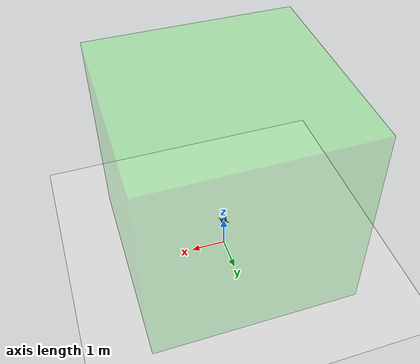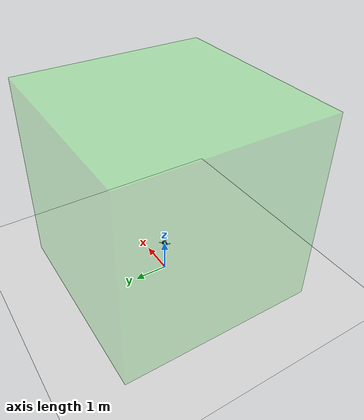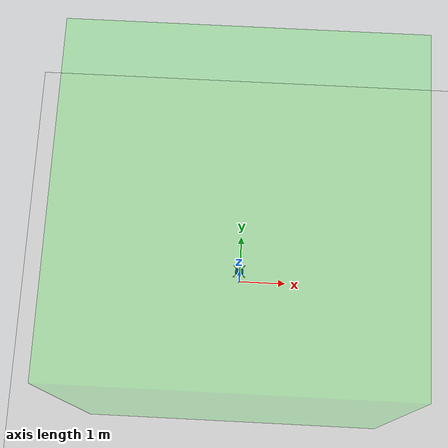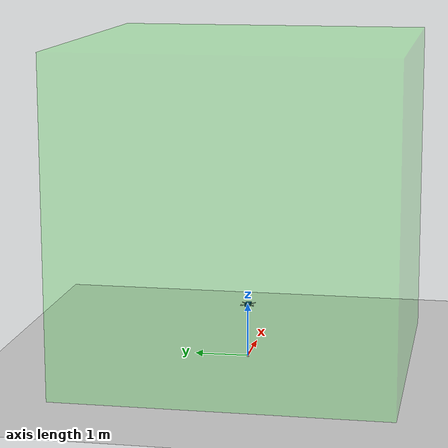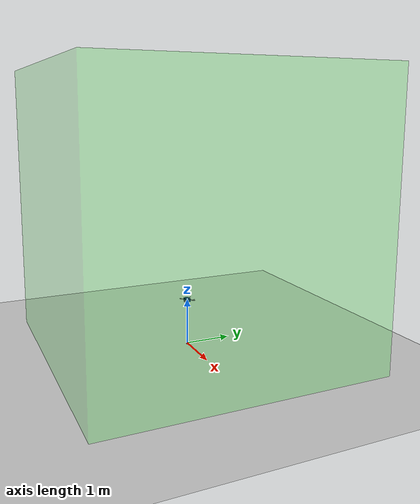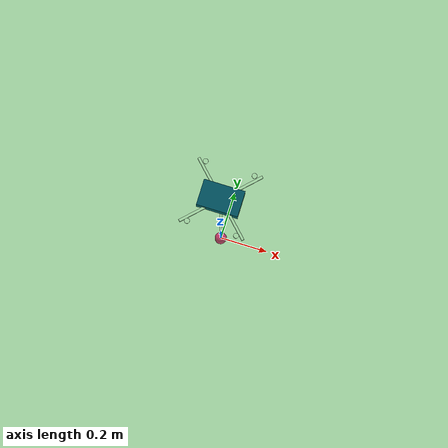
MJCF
<mujoco model="quadrotor_white_falcon">
    <compiler angle="degree" coordinate="local"/>
    <option timestep="0.002" gravity="0 0 -9.81" density="1.225" viscosity="1.789e-5" integrator="RK4" />  wind="10 0 0"
    <default>
        <geom contype="0" conaffinity="0" condim="1" solref="0.001 1" density="0"/>
        <default class="collision">
            <geom group="2" contype="1" type="box" density="0" />
        </default>
    </default>
    <asset>
        <texture builtin="gradient" height="100" width="100" rgb1="0.6 0.8 1.0" rgb2="1 1 1" type="skybox"/>
        <texture name="texplane" builtin="checker" height="100" width="100" rgb1="0.7 0.8 1.0" rgb2="1 1 1" type="2d"/>
        <material name="matplane" texture="texplane" texrepeat="10 10" reflectance="0.2" shininess="0.2" specular="0.5"/>
    </asset>

    <worldbody>
        <light cutoff="100" diffuse="1 1 1" dir="0 0 -1.3" directional="true" exponent="1" pos="0 0 10" specular=".1 .1 .1"/>
        <geom conaffinity="1" condim="3" material="matplane" name="floor" pos="0 0 -0.05" rgba="0.8 0.8 0.8 1" size="10 10 0.2" type="plane"/>
        <geom type="box" size="3 3 3" pos="0 0 2.94" rgba="0 1 0 0.05" conaffinity="0"/>

        <body name="quadrotor" pos="0 0 1">
            <freejoint/>
            <inertial pos="0 0 0" mass="0.835" diaginertia="0.00401 0.00358 0.00636" />
            <geom class="collision" type="box" pos="0 0 0" quat="1 0 0 0" size="0.08 0.05 0.025" rgba="0 0.15 0.47 1" />
            <site name="body_frame" pos="0 0 0" quat="1 0 0 0"/>

            <!-- Arms -->
            <geom type="box" pos="0.071 0.071 0.0" size="0.075 .005 .005" quat="0.924 0.0 0.0 0.383" rgba=".8 .8 .8 1" />
            <geom type="box" pos="0.071 -0.071 0.0" size="0.075 .005 .005" quat="0.383 0.0 0.0 0.924" rgba=".8 .8 .8 1" />
            <geom type="box" pos="-0.071 -0.071 0.0" size="0.075 .005 .005" quat="-0.383 0.0 0.0 0.924" rgba=".8 .8 .8 1" />
            <geom type="box" pos="-0.071 0.071 0.0" size="0.075 .005 .005" quat="0.924 0.0 0.0 -0.383" rgba=".8 .8 .8 1" />

            <!-- Motors -->
            <geom type="cylinder" pos="0.095 0.1175 0.0125" size="0.05 0.0025" quat="1 0 0 0" rgba="1 0.67 0 0.5" />
            <site name="motor0" type="cylinder" pos="0.095 0.1175 0.0125" size=".01 .0025" quat="1 0 0 0" rgba=".8 .8 .8 1" />

            <geom type="cylinder" pos="0.095 -0.1175 0.0125" size="0.05 0.0025" quat="1 0 0 0" rgba="1 0.67 0 0.5" />
            <site name="motor1" type="cylinder" pos="0.095 -0.1175 .0125" size="0.01 0.0025" quat="1 0 0 0" rgba=".8 .8 .8 1" />

            <geom type="cylinder" pos="-0.095 -0.1175 0.0125" size="0.05 0.0025" quat="1 0 0 0" rgba="1 0.67 0 0.5" />
            <site name="motor2" type="cylinder" pos="-0.095 -0.1175 .0125" size="0.01 0.0025" quat="1 0 0 0" rgba=".8 .8 .8 1" />

            <geom type="cylinder" pos="-0.095 0.1175 0.0125" size="0.05 0.0025" quat="1 0 0 0" rgba="1 0.67 0 0.5" />
            <site name="motor3" type="cylinder" pos="-0.095 0.1175 .0125" size="0.01 0.0025" quat="1 0 0 0" rgba=".8 .8 .8 1" />

            <!-- Hook Core -->
            <site name="hook_core_site" pos="0 0 0" type="sphere" size="0.01" rgba=".8 .8 .8 1"/>
        </body>

        <body name="payload" pos="0 0 0">
            <joint name="payload" type="free"/>
            <geom type="sphere" size="0.025" rgba="1 0.02 0.54 1" mass="0.1" class="collision"/>
            <site name="hook_payload_site" pos="0 0 0" type="sphere" size="0.01" rgba=".8 .8 .8 1"/>
        </body>
    </worldbody>

    <tendon>
        <spatial range="0.0 1.0" limited="true" rgba="1 1 1 1" width=".005" stiffness="1e-5">
            <site site="hook_core_site"/>
            <site site="hook_payload_site"/>
        </spatial>
    </tendon>

    <actuator>
        <motor name="Motor0" ctrllimited="true" ctrlrange="0 14.981" gear="0  0. 1. 0. 0. -0.025" site="motor0" />
        <motor name="Motor1" ctrllimited="true" ctrlrange="0 14.981" gear="0  0. 1. 0. 0. 0.025" site="motor1" />
        <motor name="Motor2" ctrllimited="true" ctrlrange="0 14.981" gear="0  0. 1. 0. 0. -0.025" site="motor2" />
        <motor name="Motor3" ctrllimited="true" ctrlrange="0 14.981" gear="0  0. 1. 0. 0. 0.025" site="motor3" />
    </actuator>
</mujoco>
